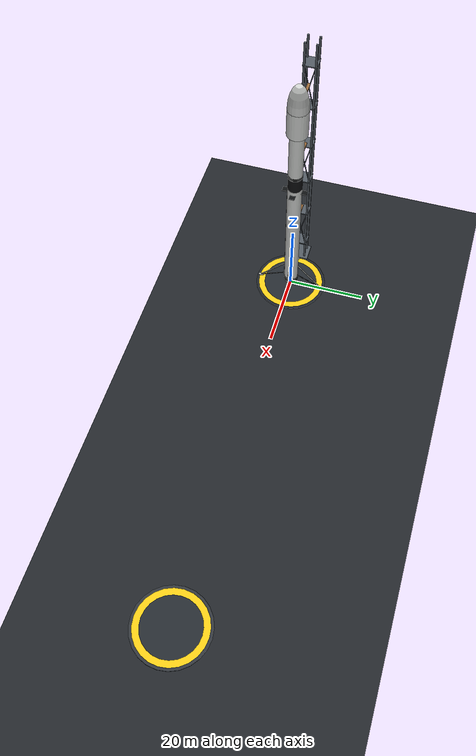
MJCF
<mujoco model="Falcon 9 proportioned powered descent rocket">
  <compiler angle="degree" autolimits="true"/>
  <option timestep="0.005" gravity="0 0 -9.81" integrator="implicitfast" solver="Newton"/>

  <visual>
    <headlight ambient="0.35 0.35 0.35" diffuse="0.75 0.75 0.75" specular="0.25 0.25 0.25"/>
    <rgba haze="0.08 0.12 0.18 1"/>
    <global azimuth="135" elevation="-14"/>
  </visual>

  <statistic center="0 0 20" extent="95"/>

  <default>
    <geom friction="0.9 0.04 0.01" condim="4" solref="0.025 1" solimp="0.90 0.95 0.003"/>
  </default>

  <asset>
    <texture name="sky" type="skybox" builtin="gradient" rgb1="0.025 0.04 0.08" rgb2="0.18 0.25 0.34" width="512" height="3072"/>
    <texture name="ground_tex" type="2d" builtin="checker" rgb1="0.16 0.18 0.20" rgb2="0.10 0.11 0.12" width="512" height="512" mark="edge" markrgb="0.25 0.27 0.30"/>
    <material name="ground_mat" texture="ground_tex" texrepeat="300 300" reflectance="0.12"/>
    <material name="white" rgba="0.84 0.85 0.84 1" metallic="0.35" roughness="0.42"/>
    <material name="soot" rgba="0.16 0.17 0.17 1" metallic="0.45" roughness="0.40"/>
    <material name="carbon" rgba="0.055 0.06 0.065 1" metallic="0.65" roughness="0.27"/>
    <material name="leg" rgba="0.72 0.73 0.71 1" metallic="0.72" roughness="0.28"/>
    <material name="engine" rgba="0.20 0.21 0.21 1" metallic="0.88" roughness="0.22"/>
    <material name="pad" rgba="0.18 0.20 0.22 1" metallic="0.4" roughness="0.5"/>
    <material name="launch_pad" rgba="0.12 0.14 0.16 1" metallic="0.35" roughness="0.58"/>
    <material name="tower_steel" rgba="0.31 0.34 0.37 1" metallic="0.72" roughness="0.36"/>
    <material name="tower_arm" rgba="0.58 0.40 0.22 1" metallic="0.52" roughness="0.42"/>
  </asset>

  <worldbody>
    <light pos="-45 -35 85" dir="0.5 0.4 -1" directional="true" diffuse="0.9 0.86 0.78" castshadow="true"/>
    <light pos="55 30 55" dir="-0.8 -0.4 -1" directional="true" diffuse="0.26 0.34 0.5"/>

    <geom name="ground" type="plane" size="50000 50000 0.1" material="ground_mat"/>
    <geom name="launch_pad" type="cylinder" pos="0 0 0.08" size="9.5 0.08" material="launch_pad"/>
    <geom name="launch_target_outer" type="cylinder" pos="0 0 0.172" size="8.8 0.01" rgba="1.0 0.78 0.08 1" contype="0" conaffinity="0"/>
    <geom name="launch_target_inner" type="cylinder" pos="0 0 0.184" size="7.2 0.012" rgba="0.14 0.16 0.18 1" contype="0" conaffinity="0"/>
    <geom name="landing_pad" type="cylinder" pos="100 0 0.08" size="9.5 0.08" material="pad"/>
    <geom name="target_outer" type="cylinder" pos="100 0 0.172" size="8.8 0.01" rgba="1.0 0.78 0.08 1" contype="0" conaffinity="0"/>
    <geom name="target_inner" type="cylinder" pos="100 0 0.184" size="7.2 0.012" rgba="0.14 0.16 0.18 1" contype="0" conaffinity="0"/>
    <!-- Invisible launch support; disabled permanently once flight begins. -->
    <geom name="launch_mount" type="cylinder" pos="0 0 0.61" size="1.50 0.61" rgba="0 0 0 0"/>

    <!-- Visual-only launch tower on world -X, left of the rocket. -->
    <body name="launch_tower" pos="-11 0 0">
      <geom name="launch_tower_base" type="box" pos="0 0 0.35" size="2.4 2.4 0.35" material="tower_steel" contype="0" conaffinity="0"/>
      <geom name="launch_tower_column_xm_ym" type="box" pos="-1.4 -1.4 36" size="0.24 0.24 36" material="tower_steel" contype="0" conaffinity="0"/>
      <geom name="launch_tower_column_xm_yp" type="box" pos="-1.4 1.4 36" size="0.24 0.24 36" material="tower_steel" contype="0" conaffinity="0"/>
      <geom name="launch_tower_column_xp_ym" type="box" pos="1.4 -1.4 36" size="0.24 0.24 36" material="tower_steel" contype="0" conaffinity="0"/>
      <geom name="launch_tower_column_xp_yp" type="box" pos="1.4 1.4 36" size="0.24 0.24 36" material="tower_steel" contype="0" conaffinity="0"/>
      <geom name="launch_tower_platform_06" type="box" pos="0 0 6" size="1.75 1.75 0.14" material="tower_steel" contype="0" conaffinity="0"/>
      <geom name="launch_tower_platform_18" type="box" pos="0 0 18" size="1.75 1.75 0.14" material="tower_steel" contype="0" conaffinity="0"/>
      <geom name="launch_tower_platform_30" type="box" pos="0 0 30" size="1.75 1.75 0.14" material="tower_steel" contype="0" conaffinity="0"/>
      <geom name="launch_tower_platform_42" type="box" pos="0 0 42" size="1.75 1.75 0.14" material="tower_steel" contype="0" conaffinity="0"/>
      <geom name="launch_tower_platform_54" type="box" pos="0 0 54" size="1.75 1.75 0.14" material="tower_steel" contype="0" conaffinity="0"/>
      <geom name="launch_tower_platform_66" type="box" pos="0 0 66" size="1.75 1.75 0.14" material="tower_steel" contype="0" conaffinity="0"/>
      <geom name="launch_tower_brace_low_a" type="capsule" fromto="1.4 -1.4 6 1.4 1.4 18" size="0.12" material="tower_steel" contype="0" conaffinity="0"/>
      <geom name="launch_tower_brace_low_b" type="capsule" fromto="1.4 1.4 6 1.4 -1.4 18" size="0.12" material="tower_steel" contype="0" conaffinity="0"/>
      <geom name="launch_tower_brace_mid_a" type="capsule" fromto="1.4 -1.4 30 1.4 1.4 42" size="0.12" material="tower_steel" contype="0" conaffinity="0"/>
      <geom name="launch_tower_brace_mid_b" type="capsule" fromto="1.4 1.4 30 1.4 -1.4 42" size="0.12" material="tower_steel" contype="0" conaffinity="0"/>
      <geom name="launch_tower_brace_high_a" type="capsule" fromto="1.4 -1.4 54 1.4 1.4 66" size="0.12" material="tower_steel" contype="0" conaffinity="0"/>
      <geom name="launch_tower_brace_high_b" type="capsule" fromto="1.4 1.4 54 1.4 -1.4 66" size="0.12" material="tower_steel" contype="0" conaffinity="0"/>
      <geom name="launch_tower_service_arm_low" type="box" pos="5.0 0 21" size="3.6 0.32 0.24" material="tower_arm" contype="0" conaffinity="0"/>
      <geom name="launch_tower_service_arm_mid" type="box" pos="5.0 0 43" size="3.6 0.32 0.24" material="tower_arm" contype="0" conaffinity="0"/>
      <geom name="launch_tower_service_arm_high" type="box" pos="5.0 0 61" size="3.6 0.32 0.24" material="tower_arm" contype="0" conaffinity="0"/>
    </body>

    <body name="rocket" pos="0 0 20.76">
      <freejoint name="rocket_freejoint"/>
      <inertial pos="0 0 0" mass="30000" diaginertia="4300000 4300000 60000"/>

      <!-- 3.66 m diameter propellant tank and upper interstage. -->
      <geom name="fuselage" type="cylinder" pos="0 0 -0.50" size="1.83 16.90" material="white"/>
      <geom name="upper_raceway" type="box" pos="0 -1.835 -0.2" size="0.10 0.055 15.6" material="soot" contype="0" conaffinity="0"/>
      <geom name="interstage" type="cylinder" pos="0 0 18.42" size="1.83 2.02" material="carbon"/>
      <geom name="interstage_lip" type="cylinder" pos="0 0 20.31" size="1.91 0.13" material="soot" contype="0" conaffinity="0"/>

      <!-- Full-stack ascent visuals. Python hides these in the landing lab and
           jettisons them when the autonomous launch-return mission separates. -->
      <geom name="upper_stage" type="cylinder" pos="0 0 27.15" size="1.83 6.70" material="white" contype="0" conaffinity="0"/>
      <geom name="upper_stage_skirt" type="cylinder" pos="0 0 20.72" size="1.86 0.30" material="soot" contype="0" conaffinity="0"/>
      <geom name="payload_fairing_lower" type="cylinder" pos="0 0 37.45" size="2.60 3.60" material="white" contype="0" conaffinity="0"/>
      <geom name="payload_fairing_upper" type="ellipsoid" pos="0 0 41.05" size="2.60 2.60 6.70" material="white" contype="0" conaffinity="0"/>

      <!-- Sooted engine section and octaweb. -->
      <geom name="lower_skirt" type="cylinder" pos="0 0 -18.15" size="1.90 0.75" material="soot"/>
      <geom name="octaweb" type="cylinder" pos="0 0 -19.22" size="1.66 0.32" material="carbon"/>

      <!-- Four horizontally deployed grid fins near the top of the first stage. -->
      <geom name="grid_fin_xp" type="box" pos="2.42 0 15.25" size="0.66 0.72 0.075" material="carbon" contype="0" conaffinity="0"/>
      <geom name="grid_fin_xm" type="box" pos="-2.42 0 15.25" size="0.66 0.72 0.075" material="carbon" contype="0" conaffinity="0"/>
      <geom name="grid_fin_yp" type="box" pos="0 2.42 15.25" size="0.72 0.66 0.075" material="carbon" contype="0" conaffinity="0"/>
      <geom name="grid_fin_ym" type="box" pos="0 -2.42 15.25" size="0.72 0.66 0.075" material="carbon" contype="0" conaffinity="0"/>

      <!-- Canonical deployed leg geometry; Python animates it from stowed poses. -->
      <geom name="leg_xp" type="capsule" fromto="1.63 0 -13.10 8.50 0 -20.38" size="0.16" material="leg"/>
      <geom name="leg_xm" type="capsule" fromto="-1.63 0 -13.10 -8.50 0 -20.38" size="0.16" material="leg"/>
      <geom name="leg_yp" type="capsule" fromto="0 1.63 -13.10 0 8.50 -20.38" size="0.16" material="leg"/>
      <geom name="leg_ym" type="capsule" fromto="0 -1.63 -13.10 0 -8.50 -20.38" size="0.16" material="leg"/>

      <geom name="strut_xp" type="capsule" fromto="1.72 0 -17.15 8.50 0 -20.38" size="0.095" material="soot"/>
      <geom name="strut_xm" type="capsule" fromto="-1.72 0 -17.15 -8.50 0 -20.38" size="0.095" material="soot"/>
      <geom name="strut_yp" type="capsule" fromto="0 1.72 -17.15 0 8.50 -20.38" size="0.095" material="soot"/>
      <geom name="strut_ym" type="capsule" fromto="0 -1.72 -17.15 0 -8.50 -20.38" size="0.095" material="soot"/>

      <geom name="foot_xp" type="ellipsoid" pos="8.50 0 -20.38" size="0.72 0.38 0.22" material="leg"/>
      <geom name="foot_xm" type="ellipsoid" pos="-8.50 0 -20.38" size="0.72 0.38 0.22" material="leg"/>
      <geom name="foot_yp" type="ellipsoid" pos="0 8.50 -20.38" size="0.38 0.72 0.22" material="leg"/>
      <geom name="foot_ym" type="ellipsoid" pos="0 -8.50 -20.38" size="0.38 0.72 0.22" material="leg"/>

      <!-- Nine Merlin-like engine bells in a 1+8 arrangement. -->
      <geom name="engine_center" type="cylinder" pos="0 0 -19.82" size="0.42 0.27" material="engine" contype="0" conaffinity="0"/>
      <geom name="engine_1" type="cylinder" pos="1.06 0 -19.82" size="0.34 0.27" material="engine" contype="0" conaffinity="0"/>
      <geom name="engine_2" type="cylinder" pos="0.75 0.75 -19.82" size="0.34 0.27" material="engine" contype="0" conaffinity="0"/>
      <geom name="engine_3" type="cylinder" pos="0 1.06 -19.82" size="0.34 0.27" material="engine" contype="0" conaffinity="0"/>
      <geom name="engine_4" type="cylinder" pos="-0.75 0.75 -19.82" size="0.34 0.27" material="engine" contype="0" conaffinity="0"/>
      <geom name="engine_5" type="cylinder" pos="-1.06 0 -19.82" size="0.34 0.27" material="engine" contype="0" conaffinity="0"/>
      <geom name="engine_6" type="cylinder" pos="-0.75 -0.75 -19.82" size="0.34 0.27" material="engine" contype="0" conaffinity="0"/>
      <geom name="engine_7" type="cylinder" pos="0 -1.06 -19.82" size="0.34 0.27" material="engine" contype="0" conaffinity="0"/>
      <geom name="engine_8" type="cylinder" pos="0.75 -0.75 -19.82" size="0.34 0.27" material="engine" contype="0" conaffinity="0"/>

      <geom name="engine_flame" type="cylinder" pos="0 0 -20.60" size="0.30 0.50" rgba="1 0.28 0.03 0" contype="0" conaffinity="0" group="3"/>
      <geom name="engine_flame_1" type="cylinder" pos="1.06 0 -20.60" size="0.25 0.50" rgba="1 0.28 0.03 0" contype="0" conaffinity="0" group="3"/>
      <geom name="engine_flame_2" type="cylinder" pos="0.75 0.75 -20.60" size="0.25 0.50" rgba="1 0.28 0.03 0" contype="0" conaffinity="0" group="3"/>
      <geom name="engine_flame_3" type="cylinder" pos="0 1.06 -20.60" size="0.25 0.50" rgba="1 0.28 0.03 0" contype="0" conaffinity="0" group="3"/>
      <geom name="engine_flame_4" type="cylinder" pos="-0.75 0.75 -20.60" size="0.25 0.50" rgba="1 0.28 0.03 0" contype="0" conaffinity="0" group="3"/>
      <geom name="engine_flame_5" type="cylinder" pos="-1.06 0 -20.60" size="0.25 0.50" rgba="1 0.28 0.03 0" contype="0" conaffinity="0" group="3"/>
      <geom name="engine_flame_6" type="cylinder" pos="-0.75 -0.75 -20.60" size="0.25 0.50" rgba="1 0.28 0.03 0" contype="0" conaffinity="0" group="3"/>
      <geom name="engine_flame_7" type="cylinder" pos="0 -1.06 -20.60" size="0.25 0.50" rgba="1 0.28 0.03 0" contype="0" conaffinity="0" group="3"/>
      <geom name="engine_flame_8" type="cylinder" pos="0.75 -0.75 -20.60" size="0.25 0.50" rgba="1 0.28 0.03 0" contype="0" conaffinity="0" group="3"/>
      <site name="thrust_origin" pos="0 0 -20.10" size="0.11" rgba="1 0.55 0.1 1"/>
      <!-- Opposed tangential RCS sites form a zero-net-force roll couple. -->
      <site name="roll_rcs_xp" pos="1.75 0 15.25" size="0.09" rgba="0.15 0.75 1 0.8"/>
      <site name="roll_rcs_xm" pos="-1.75 0 15.25" size="0.09" rgba="0.15 0.75 1 0.8"/>
    </body>

    <body name="separated_upper_stage" pos="0 0 -1000">
      <freejoint name="upper_stage_freejoint"/>
      <inertial pos="0 0 34.0" mass="111500" diaginertia="7767663 7767663 192010"/>
      <geom name="separated_upper_stage_tank" type="cylinder" pos="0 0 27.15" size="1.83 6.70" material="white" rgba="0.84 0.85 0.84 0" contype="0" conaffinity="0"/>
      <geom name="separated_upper_stage_skirt" type="cylinder" pos="0 0 20.72" size="1.86 0.30" material="soot" rgba="0.16 0.17 0.17 0" contype="0" conaffinity="0"/>
      <geom name="separated_payload_fairing_lower" type="cylinder" pos="0 0 37.45" size="2.60 3.60" material="white" rgba="0.84 0.85 0.84 0" contype="0" conaffinity="0"/>
      <geom name="separated_payload_fairing_upper" type="ellipsoid" pos="0 0 41.05" size="2.60 2.60 6.70" material="white" rgba="0.84 0.85 0.84 0" contype="0" conaffinity="0"/>
      <geom name="separated_upper_stage_flame" type="cylinder" pos="0 0 19.85" size="0.34 0.70" rgba="0.25 0.55 1 0" contype="0" conaffinity="0" group="3"/>
    </body>
  </worldbody>
</mujoco>
